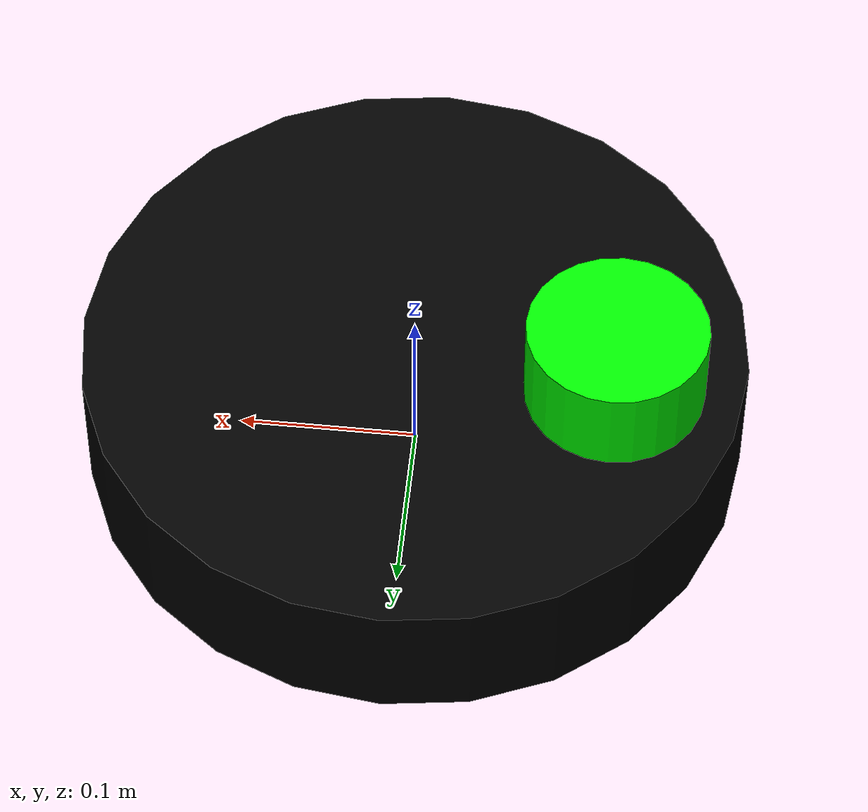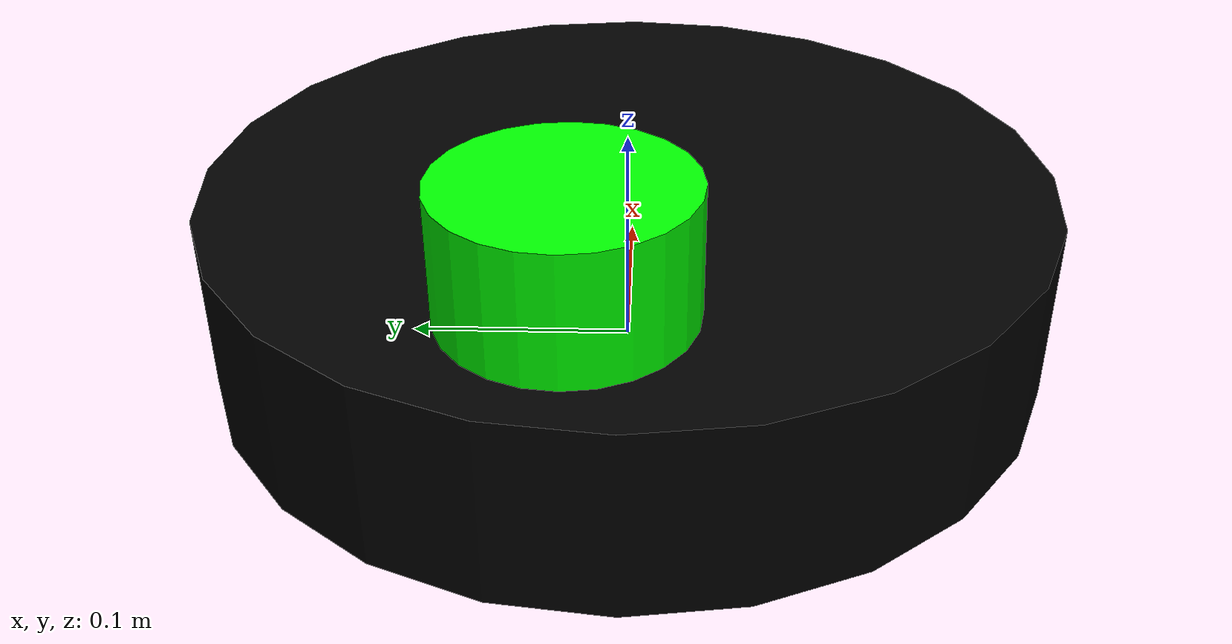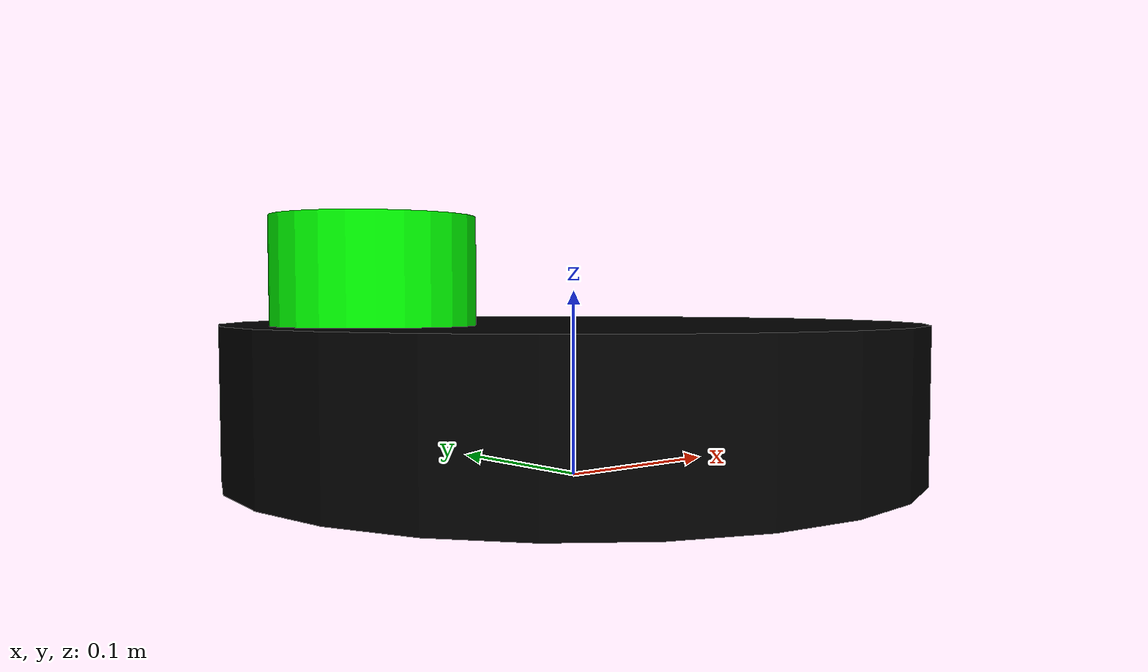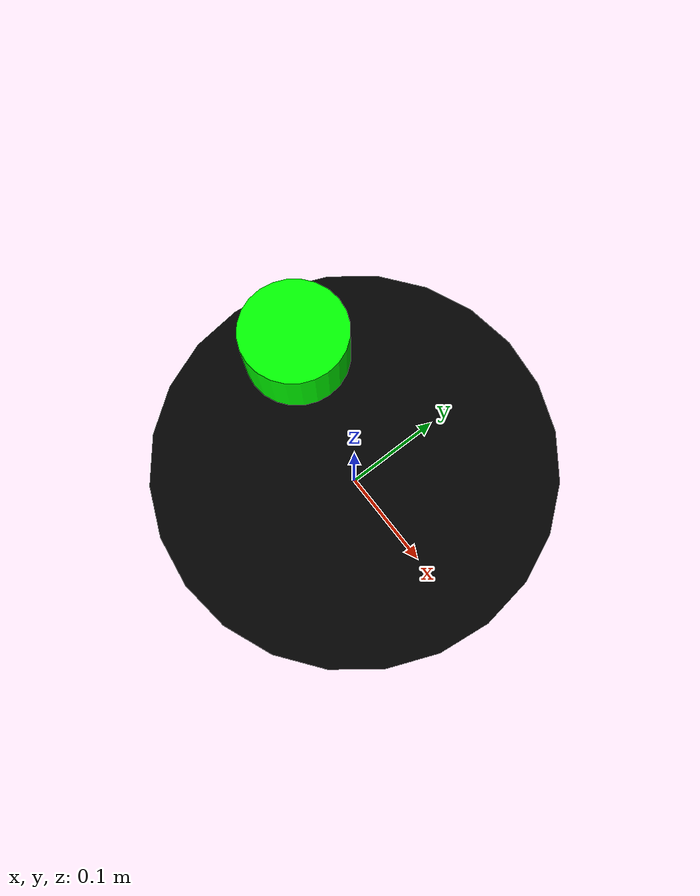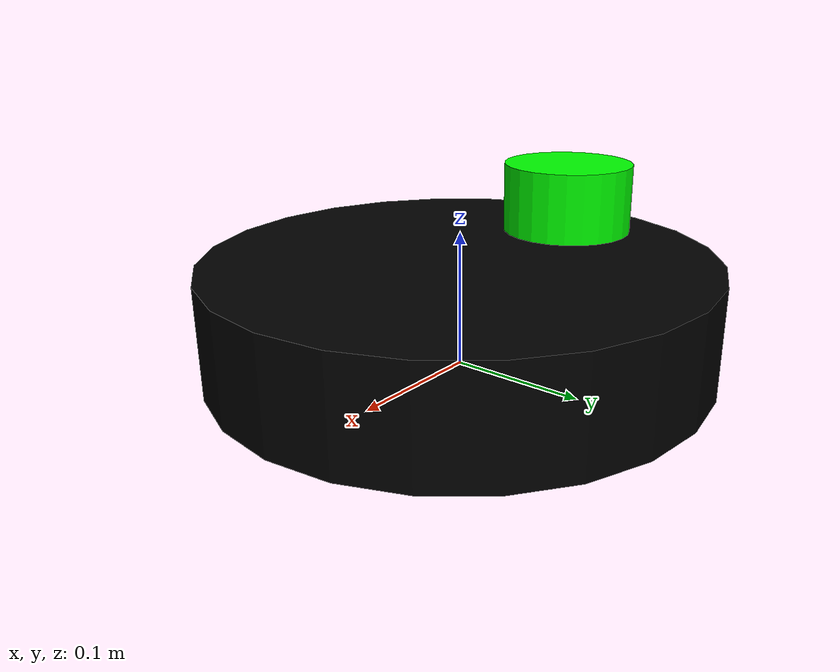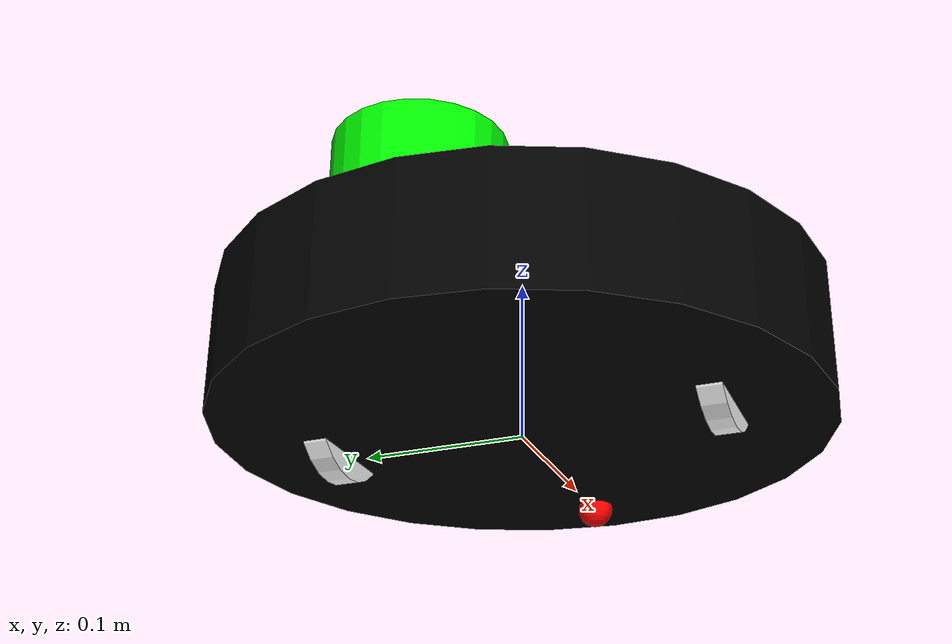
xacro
<?xml version="1.0"?>
<robot xmlns:xacro="http://www.ros.org/wiki/xacro" name="robot">

    <xacro:include filename="robot_core.xacro"/>

    <xacro:include filename="ros2_control.xacro" />
    <xacro:include filename="lidar.xacro"/>

</robot>

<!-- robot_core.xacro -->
<robot xmlns:xacro="http://www.ros.org/wiki/xacro">

    <xacro:include filename="inertial_macros.xacro"/>

    <material name="black">
        <color rgba="0 0 0 1"/>
    </material>

    <material name="white">
        <color rgba="1 1 1 1"/>
    </material>

    <material name="red">
        <color rgba="1 0 0 1"/>
    </material>

    <material name="green">
        <color rgba="0 1 0 1"/>
    </material>

    <!-- BASE LINK -->
    <link name="base_link">
    </link>

    <!-- CHASSIS LINK -->
    <joint name="chassis_joint" type="fixed">
        <parent link="base_link"/>
        <child link="chassis"/>
        <origin rpy="0 0 0" xyz="0 0 0"/>
    </joint>

    <link name="chassis">
        <visual>
          <origin rpy="0 0 0" xyz="0 0 0.043"/>
          <geometry>
            <cylinder length="0.08" radius="0.185"/>
          </geometry>
          <material name="black"/>
        </visual>
        <collision>
          <origin rpy="0 0 0" xyz="0 0 0.043"/>
          <geometry>
            <cylinder length="0.08" radius="0.185"/>
          </geometry>
        </collision>
        <xacro:inertial_cylinder mass="3.6" length="0.08" radius="0.185">
            <origin rpy="0 0 0" xyz="0 0 0.043"/>
        </xacro:inertial_cylinder>
    </link>

    <gazebo reference="chassis">
        <material>Gazebo/Black</material>
    </gazebo>

    <!-- LEFT WHEEL LINK -->

    <joint name="left_wheel_joint" type="continuous">
        <parent link="base_link"/>
        <child link="left_wheel"/>
        <origin rpy="-${pi/2} 0 0" xyz="0 0.12 0.0336"/>
        <axis xyz="0 0 1"/>
    </joint>

    <link name="left_wheel">
        <visual>
            <geometry>
                <cylinder length="0.015" radius="0.045"/>
            </geometry>
            <material name="white"/>
        </visual>
        <collision>
            <geometry>
                <cylinder length="0.015" radius="0.045"/>
            </geometry>
        </collision>
        <xacro:inertial_cylinder mass="0.1" length="0.015" radius="0.045">
            <origin rpy="0 0 0" xyz="0 0 0"/>
        </xacro:inertial_cylinder>
    </link>
    <gazebo reference="left_wheel">
        <material>Gazebo/White</material>
    </gazebo>

    <!-- RIGHT WHEEL LINK -->
    <joint name="right_wheel_joint" type="continuous">
        <parent link="base_link"/>
        <child link="right_wheel"/>
        <origin rpy="${pi/2} 0 0" xyz="0 -0.12 0.0336"/>
        <axis xyz="0 0 -1"/>
    </joint>

    <link name="right_wheel">
        <visual>
            <geometry>
                <cylinder length="0.015" radius="0.045"/>
            </geometry>
            <material name="white"/>
        </visual>
        <collision>
            <geometry>
                <cylinder length="0.015" radius="0.045"/>
            </geometry>
        </collision>
        <xacro:inertial_cylinder mass="0.1" length="0.015" radius="0.045">
            <origin rpy="0 0 0" xyz="0 0 0"/>
        </xacro:inertial_cylinder>
    </link>
    <gazebo reference="right_wheel">
        <material>Gazebo/White</material>
    </gazebo>

    <!-- CASTER WHEEL LINK -->
    <joint name="caster_wheel_joint" type="fixed">
        <parent link="chassis"/>
        <child link="caster_wheel"/>
        <origin xyz="0.14 0 0"/>
    </joint>

    <link name="caster_wheel">
        <visual>
            <geometry>
                <sphere radius="0.0114"/>
            </geometry>
            <material name="red"/>
        </visual>
        <collision>
            <geometry>
                <sphere radius="0.0114"/>
            </geometry>
        </collision>
        <xacro:inertial_sphere mass="0.1" radius="0.0114">
            <origin rpy="0 0 0" xyz="0 0 0"/>
        </xacro:inertial_sphere>
    </link>

    <gazebo reference="caster_wheel">
        <material>Gazebo/Red</material>
        <mu1 value="0.001"/>
        <mu2 value="0.001"/>
    </gazebo>

</robot>

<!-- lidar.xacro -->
<robot xmlns:xacro="http://www.ros.org/wiki/xacro">

    <joint name="laser_joint" type="fixed">
        <parent link="chassis"/>
        <child link="laser_frame"/>
        <origin rpy="0 0 0" xyz="-0.112 0.02 0.108"/>
    </joint>

    <link name="laser_frame">
        <visual>
            <geometry>
              <cylinder length="0.056" radius="0.05"/>
            </geometry>
            <material name="green"/>
          </visual>
          <collision>
            <geometry>
              <cylinder length="0.056" radius="0.05"/>
            </geometry>
          </collision>
          <xacro:inertial_cylinder mass="0.1" length="0.056" radius="0.05">
              <origin rpy="0 0 0" xyz="0 0 0"/>
          </xacro:inertial_cylinder>
    </link>

    <gazebo reference="laser_frame">
        <material>Gazebo/Green</material>
        <sensor type="ray" name="laser">
            <pose>0 0 0 0 0 0</pose>
            <visualize>true</visualize>
            <update_rate>10</update_rate>
            <ray>
                <scan>
                    <horizontal>
                        <samples>360</samples>
                        <min_angle>-3.14</min_angle>
                        <max_angle>3.14</max_angle>
                    </horizontal>
                </scan>
                <range>
                    <min>0.3</min>
                    <max>12</max>
                </range>
            </ray>

        </sensor>
    </gazebo>
</robot>
